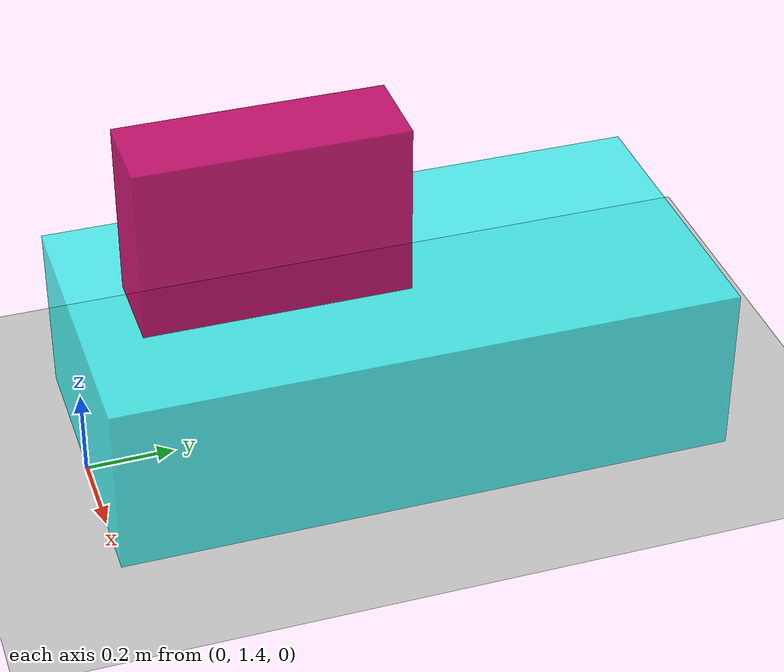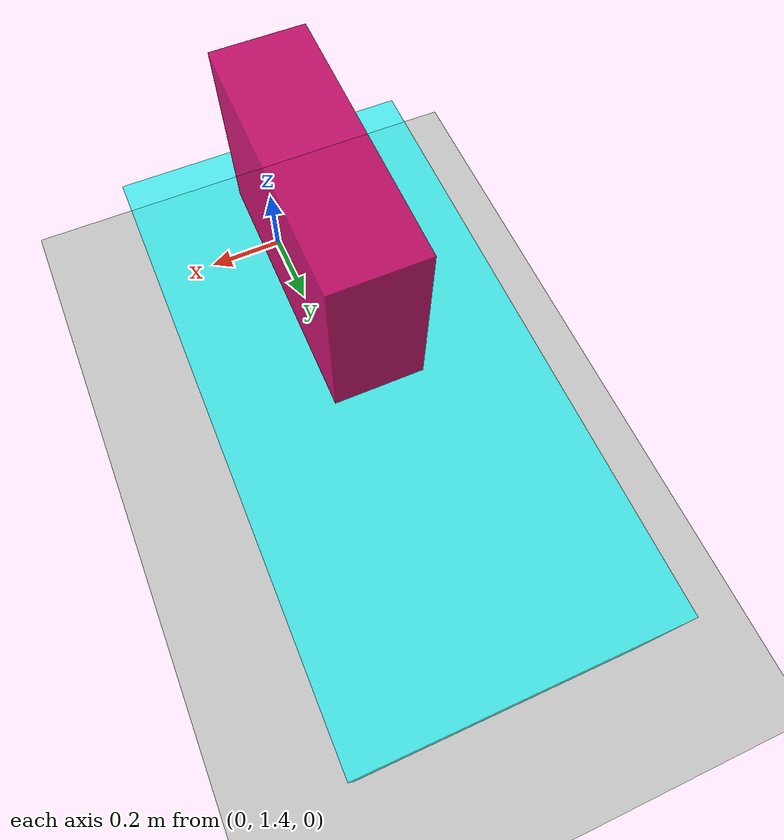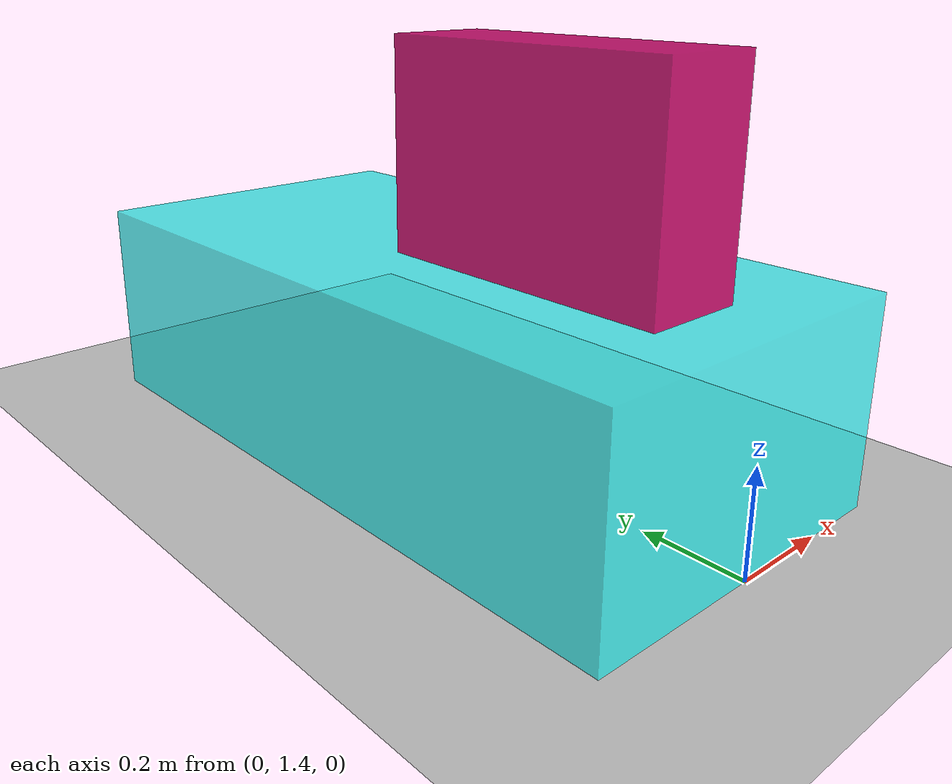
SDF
<sdf version='1.10'>
  <world name='Waterworld'>
    <physics name='default_physics' type='dart'>
      <max_step_size>0.001</max_step_size>
      <real_time_factor>1.0</real_time_factor>
      <real_time_update_rate>1000</real_time_update_rate>
      <dart>
        <collision_detector>bullet</collision_detector>
      </dart>
    </physics>
    <plugin name='gz::sim::systems::Physics' filename='gz-sim-physics-system'/>
    <plugin name='gz::sim::systems::UserCommands' filename='gz-sim-user-commands-system'/>
    <plugin name='gz::sim::systems::SceneBroadcaster' filename='gz-sim-scene-broadcaster-system'/>
    <plugin name='gz::sim::systems::Contact' filename='gz-sim-contact-system'/>
    <plugin name='gz::sim::systems::ForceTorque' filename='gz-sim-forcetorque-system'/>
    <gravity>0.0 0.00 -9.80665</gravity>
    <magnetic_field>1.83535e-05 -7.7993e-06 -1.46974e-05</magnetic_field>
    <atmosphere type='adiabatic'/>
    <scene>
      <ambient>0.40 0.40 0.40 1</ambient>
      <background>0.70 0.69 0.69 1</background>
      <shadows>false</shadows>
    </scene>
    <model name='ground_plane'>
      <static>true</static>
      <link name='link'>
        <collision name='collision'>
          <geometry>
            <plane>
              <normal>0 0 1</normal>
              <size>100 100</size>
            </plane>
          </geometry>
          <surface>
            <friction>
              <ode/>
            </friction>
            <bounce/>
            <contact/>
          </surface>
        </collision>
        <visual name='visual'>
          <geometry>
            <plane>
              <normal>0 0 1</normal>
              <size>100 100</size>
            </plane>
          </geometry>
          <material>
            <ambient>0.800000012 0.800000012 0.800000012 1</ambient>
            <diffuse>0.800000012 0.800000012 0.800000012 1</diffuse>
            <specular>0.800000012 0.800000012 0.800000012 1</specular>
          </material>
        </visual>
        <pose>0 0 0 0 0 0</pose>
        <inertial>
          <pose>0 0 0 0 0 0</pose>
          <mass>1</mass>
          <inertia>
            <ixx>1</ixx>
            <ixy>0</ixy>
            <ixz>0</ixz>
            <iyy>1</iyy>
            <iyz>0</iyz>
            <izz>1</izz>
          </inertia>
        </inertial>
        <enable_wind>false</enable_wind>
      </link>
      <pose>0 0 0 0 0 0</pose>
      <self_collide>false</self_collide>
    </model>
    <model name='rigid_table'>
      <pose>0.0 2.10 0.20 0 0 0</pose>
      <link name='rigid_table_link'>
        <inertial>
          <inertia>
            <ixx>1</ixx>
            <ixy>0</ixy>
            <ixz>0</ixz>
            <iyy>1</iyy>
            <iyz>0</iyz>
            <izz>1</izz>
          </inertia>
          <mass>1</mass>
          <pose>0 0 0 0 0 0</pose>
        </inertial>
        <collision name='rigid_table_collision'>
          <geometry>
            <box>
              <size>0.70 1.40 0.40</size>
            </box>
          </geometry>
          <surface>
            <friction>
              <ode>
                <mu>0.4</mu>
                <mu2>0.4</mu2>
              </ode>
            </friction>
            <bounce/>
            <contact/>
          </surface>
        </collision>
        <visual name='rigid_table_visual'>
          <geometry>
            <box>
              <size>0.70 1.40 0.40</size>
            </box>
          </geometry>
          <material>
            <ambient>0.20 1.0 1.0 1.0</ambient>
            <diffuse>0.20 1.0 1.0 0.80</diffuse>
            <specular>1 1 1 1</specular>
          </material>
        </visual>
        <pose>0 0 0 0 0 0</pose>
      </link>
      <static>true</static>
    </model>
    <model name='push_object'>
      <pose>0.0 1.83 0.60 0 0 0</pose>
      <link name='push_object_link'>
        <inertial>
          <inertia>
            <ixx>0.0433332</ixx>
            <ixy>0</ixy>
            <ixz>0</ixz>
            <iyy>0.0166666</iyy>
            <iyz>0</iyz>
            <izz>0.0333332</izz>
          </inertia>
          <mass>1.0</mass>
          <pose>0 0 0 0 0 0</pose>
        </inertial>
        <collision name='push_object_collision'>
          <geometry>
            <box>
              <size>0.20 0.60 0.40</size>
            </box>
          </geometry>
          <surface>
            <friction>
              <ode/>
            </friction>
            <bounce/>
            <contact/>
          </surface>
        </collision>
        <visual name='push_object_visual'>
          <geometry>
            <box>
              <size>0.20 0.60 0.40</size>
            </box>
          </geometry>
          <material>
            <ambient>0.80 0 0.40 1.0</ambient>
            <diffuse>0.80 0 0.40 0.88</diffuse>
            <specular>1 1 1 1</specular>
          </material>
        </visual>
        <pose>0 0 0 0 0 0</pose>
        <enable_wind>false</enable_wind>
      </link>
      <static>false</static>
    </model>
    <light name='sun' type='directional'>
      <pose>0 0 10 0 0 0</pose>
      <cast_shadows>false</cast_shadows>
      <intensity>1</intensity>
      <direction>0.5 0.10 -0.90</direction>
      <diffuse>0.80 0.80 0.80 1</diffuse>
      <specular>0.200 0.200 0.200 1</specular>
      <attenuation>
        <range>1000</range>
        <linear>0.01</linear>
        <constant>0.900</constant>
        <quadratic>0.001</quadratic>
      </attenuation>
      <spot>
        <inner_angle>0</inner_angle>
        <outer_angle>0</outer_angle>
        <falloff>0</falloff>
      </spot>
    </light>
  </world>
  <include>
    <uri>
      https://fuel.gazebosim.org/1.0/OpenRobotics/models/Coast Water
    </uri>
  </include>
</sdf>
